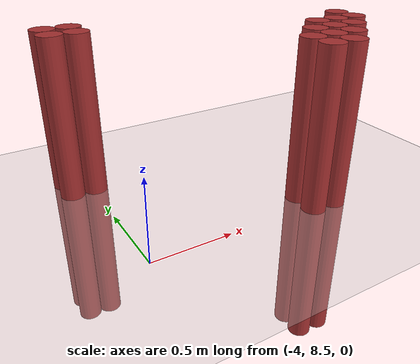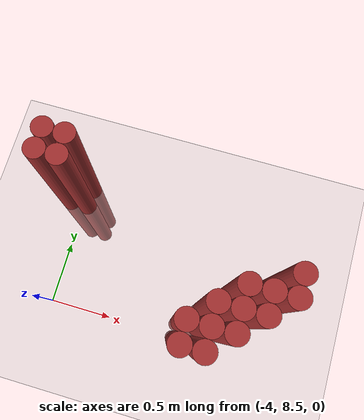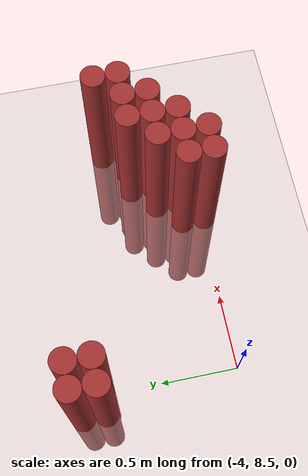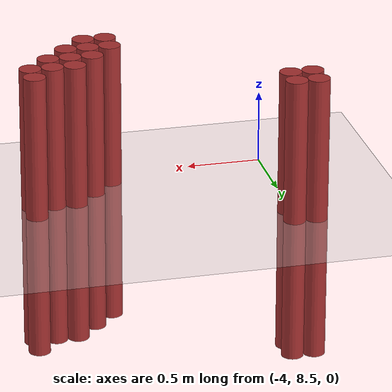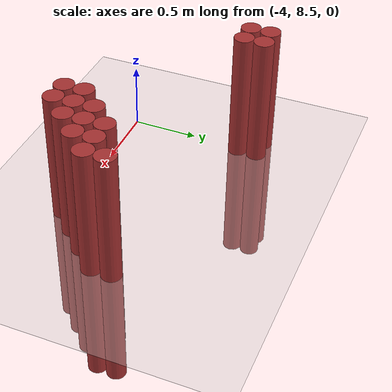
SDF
<sdf version="1.6">
 <world name="default">
  <model name="ground_plane">
   <static>1</static>
   <link name="link">
    <collision name="collision">
     <geometry><plane><normal>0 0 1</normal><size>100 100</size></plane></geometry>
     <surface><friction><ode><mu>100</mu><mu2>50</mu2></ode></friction></surface>
    </collision>
    <visual name="visual">
     <cast_shadows>0</cast_shadows>
     <geometry><plane><normal>0 0 1</normal><size>100 100</size></plane></geometry>
     <material>
      <script><uri>file://media/materials/scripts/gazebo.material</uri><name>Gazebo/Grey</name></script>
     </material>
    </visual>
   </link>
  </model>
  <model name="unit_cylinder_148">
   <static>1</static>
   <pose>-4.125000 9.375000 0.000000 0.000000 0.000000 0.000000</pose>
   <link name="link">
    <inertial>
     <mass>1</mass>
     <inertia><ixx>0.145833</ixx><ixy>0</ixy><ixz>0</ixz><iyy>0.145833</iyy><iyz>0</iyz><izz>0.125</izz></inertia>
    </inertial>
    <collision name="collision">
     <geometry><cylinder><radius>0.075000</radius><length>2</length></cylinder></geometry>
    </collision>
    <visual name="visual">
     <geometry><cylinder><radius>0.075000</radius><length>2</length></cylinder></geometry>
     <material>
      <ambient>0.648000 0.192000 0.192000 1</ambient>
      <diffuse>0.648000 0.192000 0.192000 1</diffuse>
     </material>
     <material>
      <script><name>Gazebo/Grey</name><uri>file://media/materials/scripts/gazebo.material</uri></script>
     </material>
    </visual>
   </link>
  </model>
  <model name="unit_cylinder_149">
   <static>1</static>
   <pose>-4.125000 9.525000 0.000000 0.000000 0.000000 0.000000</pose>
   <link name="link">
    <inertial>
     <mass>1</mass>
     <inertia><ixx>0.145833</ixx><ixy>0</ixy><ixz>0</ixz><iyy>0.145833</iyy><iyz>0</iyz><izz>0.125</izz></inertia>
    </inertial>
    <collision name="collision">
     <geometry><cylinder><radius>0.075000</radius><length>2</length></cylinder></geometry>
    </collision>
    <visual name="visual">
     <geometry><cylinder><radius>0.075000</radius><length>2</length></cylinder></geometry>
     <material>
      <ambient>0.648000 0.192000 0.192000 1</ambient>
      <diffuse>0.648000 0.192000 0.192000 1</diffuse>
     </material>
     <material>
      <script><name>Gazebo/Grey</name><uri>file://media/materials/scripts/gazebo.material</uri></script>
     </material>
    </visual>
   </link>
  </model>
  <model name="unit_cylinder_154">
   <static>1</static>
   <pose>-3.975000 9.375000 0.000000 0.000000 0.000000 0.000000</pose>
   <link name="link">
    <inertial>
     <mass>1</mass>
     <inertia><ixx>0.145833</ixx><ixy>0</ixy><ixz>0</ixz><iyy>0.145833</iyy><iyz>0</iyz><izz>0.125</izz></inertia>
    </inertial>
    <collision name="collision">
     <geometry><cylinder><radius>0.075000</radius><length>2</length></cylinder></geometry>
    </collision>
    <visual name="visual">
     <geometry><cylinder><radius>0.075000</radius><length>2</length></cylinder></geometry>
     <material>
      <ambient>0.648000 0.192000 0.192000 1</ambient>
      <diffuse>0.648000 0.192000 0.192000 1</diffuse>
     </material>
     <material>
      <script><name>Gazebo/Grey</name><uri>file://media/materials/scripts/gazebo.material</uri></script>
     </material>
    </visual>
   </link>
  </model>
  <model name="unit_cylinder_155">
   <static>1</static>
   <pose>-3.975000 9.525000 0.000000 0.000000 0.000000 0.000000</pose>
   <link name="link">
    <inertial>
     <mass>1</mass>
     <inertia><ixx>0.145833</ixx><ixy>0</ixy><ixz>0</ixz><iyy>0.145833</iyy><iyz>0</iyz><izz>0.125</izz></inertia>
    </inertial>
    <collision name="collision">
     <geometry><cylinder><radius>0.075000</radius><length>2</length></cylinder></geometry>
    </collision>
    <visual name="visual">
     <geometry><cylinder><radius>0.075000</radius><length>2</length></cylinder></geometry>
     <material>
      <ambient>0.648000 0.192000 0.192000 1</ambient>
      <diffuse>0.648000 0.192000 0.192000 1</diffuse>
     </material>
     <material>
      <script><name>Gazebo/Grey</name><uri>file://media/materials/scripts/gazebo.material</uri></script>
     </material>
    </visual>
   </link>
  </model>
  <model name="unit_cylinder_163">
   <static>1</static>
   <pose>-2.925000 8.475000 0.000000 0.000000 0.000000 0.000000</pose>
   <link name="link">
    <inertial>
     <mass>1</mass>
     <inertia><ixx>0.145833</ixx><ixy>0</ixy><ixz>0</ixz><iyy>0.145833</iyy><iyz>0</iyz><izz>0.125</izz></inertia>
    </inertial>
    <collision name="collision">
     <geometry><cylinder><radius>0.075000</radius><length>2</length></cylinder></geometry>
    </collision>
    <visual name="visual">
     <geometry><cylinder><radius>0.075000</radius><length>2</length></cylinder></geometry>
     <material>
      <ambient>0.648000 0.192000 0.192000 1</ambient>
      <diffuse>0.648000 0.192000 0.192000 1</diffuse>
     </material>
     <material>
      <script><name>Gazebo/Grey</name><uri>file://media/materials/scripts/gazebo.material</uri></script>
     </material>
    </visual>
   </link>
  </model>
  <model name="unit_cylinder_164">
   <static>1</static>
   <pose>-2.925000 8.625000 0.000000 0.000000 0.000000 0.000000</pose>
   <link name="link">
    <inertial>
     <mass>1</mass>
     <inertia><ixx>0.145833</ixx><ixy>0</ixy><ixz>0</ixz><iyy>0.145833</iyy><iyz>0</iyz><izz>0.125</izz></inertia>
    </inertial>
    <collision name="collision">
     <geometry><cylinder><radius>0.075000</radius><length>2</length></cylinder></geometry>
    </collision>
    <visual name="visual">
     <geometry><cylinder><radius>0.075000</radius><length>2</length></cylinder></geometry>
     <material>
      <ambient>0.648000 0.192000 0.192000 1</ambient>
      <diffuse>0.648000 0.192000 0.192000 1</diffuse>
     </material>
     <material>
      <script><name>Gazebo/Grey</name><uri>file://media/materials/scripts/gazebo.material</uri></script>
     </material>
    </visual>
   </link>
  </model>
  <model name="unit_cylinder_165">
   <static>1</static>
   <pose>-2.775000 8.475000 0.000000 0.000000 0.000000 0.000000</pose>
   <link name="link">
    <inertial>
     <mass>1</mass>
     <inertia><ixx>0.145833</ixx><ixy>0</ixy><ixz>0</ixz><iyy>0.145833</iyy><iyz>0</iyz><izz>0.125</izz></inertia>
    </inertial>
    <collision name="collision">
     <geometry><cylinder><radius>0.075000</radius><length>2</length></cylinder></geometry>
    </collision>
    <visual name="visual">
     <geometry><cylinder><radius>0.075000</radius><length>2</length></cylinder></geometry>
     <material>
      <ambient>0.648000 0.192000 0.192000 1</ambient>
      <diffuse>0.648000 0.192000 0.192000 1</diffuse>
     </material>
     <material>
      <script><name>Gazebo/Grey</name><uri>file://media/materials/scripts/gazebo.material</uri></script>
     </material>
    </visual>
   </link>
  </model>
  <model name="unit_cylinder_166">
   <static>1</static>
   <pose>-2.775000 8.625000 0.000000 0.000000 0.000000 0.000000</pose>
   <link name="link">
    <inertial>
     <mass>1</mass>
     <inertia><ixx>0.145833</ixx><ixy>0</ixy><ixz>0</ixz><iyy>0.145833</iyy><iyz>0</iyz><izz>0.125</izz></inertia>
    </inertial>
    <collision name="collision">
     <geometry><cylinder><radius>0.075000</radius><length>2</length></cylinder></geometry>
    </collision>
    <visual name="visual">
     <geometry><cylinder><radius>0.075000</radius><length>2</length></cylinder></geometry>
     <material>
      <ambient>0.648000 0.192000 0.192000 1</ambient>
      <diffuse>0.648000 0.192000 0.192000 1</diffuse>
     </material>
     <material>
      <script><name>Gazebo/Grey</name><uri>file://media/materials/scripts/gazebo.material</uri></script>
     </material>
    </visual>
   </link>
  </model>
  <model name="unit_cylinder_167">
   <static>1</static>
   <pose>-2.775000 8.775000 0.000000 0.000000 0.000000 0.000000</pose>
   <link name="link">
    <inertial>
     <mass>1</mass>
     <inertia><ixx>0.145833</ixx><ixy>0</ixy><ixz>0</ixz><iyy>0.145833</iyy><iyz>0</iyz><izz>0.125</izz></inertia>
    </inertial>
    <collision name="collision">
     <geometry><cylinder><radius>0.075000</radius><length>2</length></cylinder></geometry>
    </collision>
    <visual name="visual">
     <geometry><cylinder><radius>0.075000</radius><length>2</length></cylinder></geometry>
     <material>
      <ambient>0.648000 0.192000 0.192000 1</ambient>
      <diffuse>0.648000 0.192000 0.192000 1</diffuse>
     </material>
     <material>
      <script><name>Gazebo/Grey</name><uri>file://media/materials/scripts/gazebo.material</uri></script>
     </material>
    </visual>
   </link>
  </model>
  <model name="unit_cylinder_172">
   <static>1</static>
   <pose>-2.625000 8.625000 0.000000 0.000000 0.000000 0.000000</pose>
   <link name="link">
    <inertial>
     <mass>1</mass>
     <inertia><ixx>0.145833</ixx><ixy>0</ixy><ixz>0</ixz><iyy>0.145833</iyy><iyz>0</iyz><izz>0.125</izz></inertia>
    </inertial>
    <collision name="collision">
     <geometry><cylinder><radius>0.075000</radius><length>2</length></cylinder></geometry>
    </collision>
    <visual name="visual">
     <geometry><cylinder><radius>0.075000</radius><length>2</length></cylinder></geometry>
     <material>
      <ambient>0.648000 0.192000 0.192000 1</ambient>
      <diffuse>0.648000 0.192000 0.192000 1</diffuse>
     </material>
     <material>
      <script><name>Gazebo/Grey</name><uri>file://media/materials/scripts/gazebo.material</uri></script>
     </material>
    </visual>
   </link>
  </model>
  <model name="unit_cylinder_173">
   <static>1</static>
   <pose>-2.625000 8.775000 0.000000 0.000000 0.000000 0.000000</pose>
   <link name="link">
    <inertial>
     <mass>1</mass>
     <inertia><ixx>0.145833</ixx><ixy>0</ixy><ixz>0</ixz><iyy>0.145833</iyy><iyz>0</iyz><izz>0.125</izz></inertia>
    </inertial>
    <collision name="collision">
     <geometry><cylinder><radius>0.075000</radius><length>2</length></cylinder></geometry>
    </collision>
    <visual name="visual">
     <geometry><cylinder><radius>0.075000</radius><length>2</length></cylinder></geometry>
     <material>
      <ambient>0.648000 0.192000 0.192000 1</ambient>
      <diffuse>0.648000 0.192000 0.192000 1</diffuse>
     </material>
     <material>
      <script><name>Gazebo/Grey</name><uri>file://media/materials/scripts/gazebo.material</uri></script>
     </material>
    </visual>
   </link>
  </model>
  <model name="unit_cylinder_174">
   <static>1</static>
   <pose>-2.625000 8.925000 0.000000 0.000000 0.000000 0.000000</pose>
   <link name="link">
    <inertial>
     <mass>1</mass>
     <inertia><ixx>0.145833</ixx><ixy>0</ixy><ixz>0</ixz><iyy>0.145833</iyy><iyz>0</iyz><izz>0.125</izz></inertia>
    </inertial>
    <collision name="collision">
     <geometry><cylinder><radius>0.075000</radius><length>2</length></cylinder></geometry>
    </collision>
    <visual name="visual">
     <geometry><cylinder><radius>0.075000</radius><length>2</length></cylinder></geometry>
     <material>
      <ambient>0.648000 0.192000 0.192000 1</ambient>
      <diffuse>0.648000 0.192000 0.192000 1</diffuse>
     </material>
     <material>
      <script><name>Gazebo/Grey</name><uri>file://media/materials/scripts/gazebo.material</uri></script>
     </material>
    </visual>
   </link>
  </model>
  <model name="unit_cylinder_180">
   <static>1</static>
   <pose>-2.475000 8.775000 0.000000 0.000000 0.000000 0.000000</pose>
   <link name="link">
    <inertial>
     <mass>1</mass>
     <inertia><ixx>0.145833</ixx><ixy>0</ixy><ixz>0</ixz><iyy>0.145833</iyy><iyz>0</iyz><izz>0.125</izz></inertia>
    </inertial>
    <collision name="collision">
     <geometry><cylinder><radius>0.075000</radius><length>2</length></cylinder></geometry>
    </collision>
    <visual name="visual">
     <geometry><cylinder><radius>0.075000</radius><length>2</length></cylinder></geometry>
     <material>
      <ambient>0.648000 0.192000 0.192000 1</ambient>
      <diffuse>0.648000 0.192000 0.192000 1</diffuse>
     </material>
     <material>
      <script><name>Gazebo/Grey</name><uri>file://media/materials/scripts/gazebo.material</uri></script>
     </material>
    </visual>
   </link>
  </model>
  <model name="unit_cylinder_181">
   <static>1</static>
   <pose>-2.475000 8.925000 0.000000 0.000000 0.000000 0.000000</pose>
   <link name="link">
    <inertial>
     <mass>1</mass>
     <inertia><ixx>0.145833</ixx><ixy>0</ixy><ixz>0</ixz><iyy>0.145833</iyy><iyz>0</iyz><izz>0.125</izz></inertia>
    </inertial>
    <collision name="collision">
     <geometry><cylinder><radius>0.075000</radius><length>2</length></cylinder></geometry>
    </collision>
    <visual name="visual">
     <geometry><cylinder><radius>0.075000</radius><length>2</length></cylinder></geometry>
     <material>
      <ambient>0.648000 0.192000 0.192000 1</ambient>
      <diffuse>0.648000 0.192000 0.192000 1</diffuse>
     </material>
     <material>
      <script><name>Gazebo/Grey</name><uri>file://media/materials/scripts/gazebo.material</uri></script>
     </material>
    </visual>
   </link>
  </model>
  <model name="unit_cylinder_184">
   <static>1</static>
   <pose>-2.325000 8.925000 0.000000 0.000000 0.000000 0.000000</pose>
   <link name="link">
    <inertial>
     <mass>1</mass>
     <inertia><ixx>0.145833</ixx><ixy>0</ixy><ixz>0</ixz><iyy>0.145833</iyy><iyz>0</iyz><izz>0.125</izz></inertia>
    </inertial>
    <collision name="collision">
     <geometry><cylinder><radius>0.075000</radius><length>2</length></cylinder></geometry>
    </collision>
    <visual name="visual">
     <geometry><cylinder><radius>0.075000</radius><length>2</length></cylinder></geometry>
     <material>
      <ambient>0.648000 0.192000 0.192000 1</ambient>
      <diffuse>0.648000 0.192000 0.192000 1</diffuse>
     </material>
     <material>
      <script><name>Gazebo/Grey</name><uri>file://media/materials/scripts/gazebo.material</uri></script>
     </material>
    </visual>
   </link>
  </model>
  <model name="unit_cylinder_185">
   <static>1</static>
   <pose>-2.325000 9.075000 0.000000 0.000000 0.000000 0.000000</pose>
   <link name="link">
    <inertial>
     <mass>1</mass>
     <inertia><ixx>0.145833</ixx><ixy>0</ixy><ixz>0</ixz><iyy>0.145833</iyy><iyz>0</iyz><izz>0.125</izz></inertia>
    </inertial>
    <collision name="collision">
     <geometry><cylinder><radius>0.075000</radius><length>2</length></cylinder></geometry>
    </collision>
    <visual name="visual">
     <geometry><cylinder><radius>0.075000</radius><length>2</length></cylinder></geometry>
     <material>
      <ambient>0.648000 0.192000 0.192000 1</ambient>
      <diffuse>0.648000 0.192000 0.192000 1</diffuse>
     </material>
     <material>
      <script><name>Gazebo/Grey</name><uri>file://media/materials/scripts/gazebo.material</uri></script>
     </material>
    </visual>
   </link>
  </model>
 </world>
</sdf>
